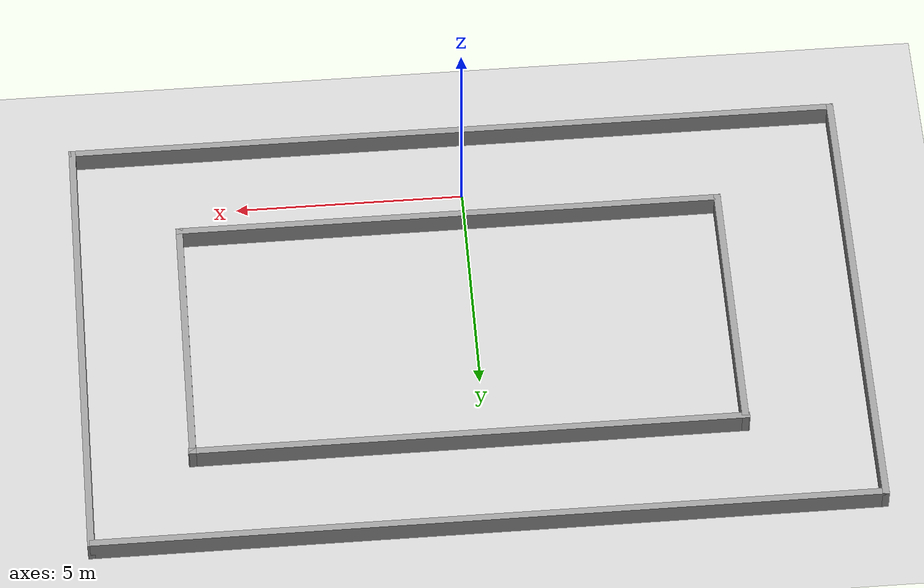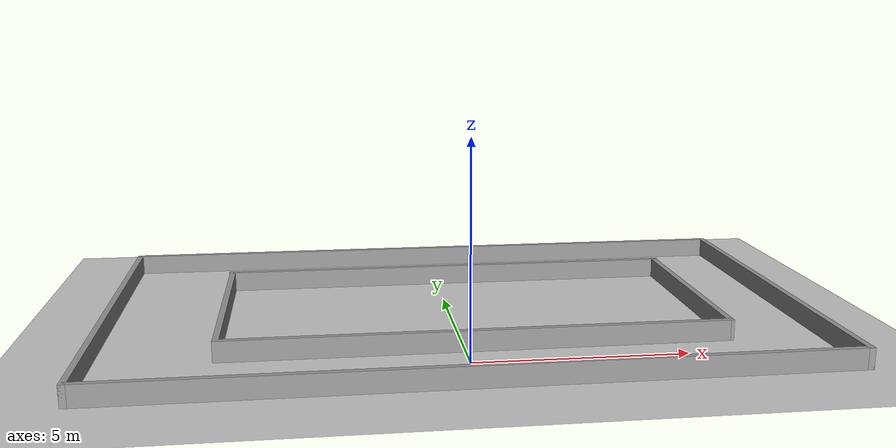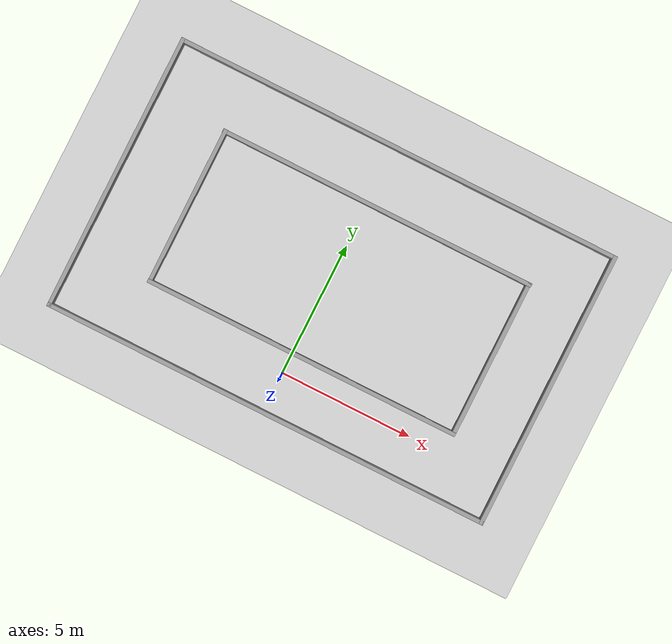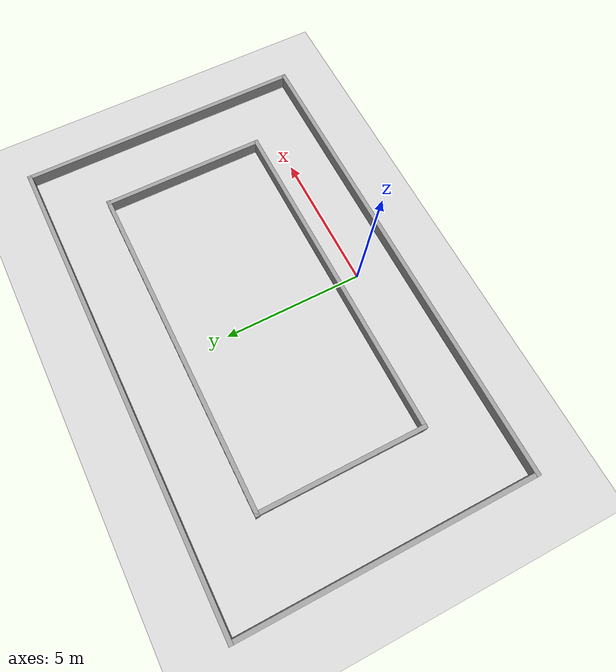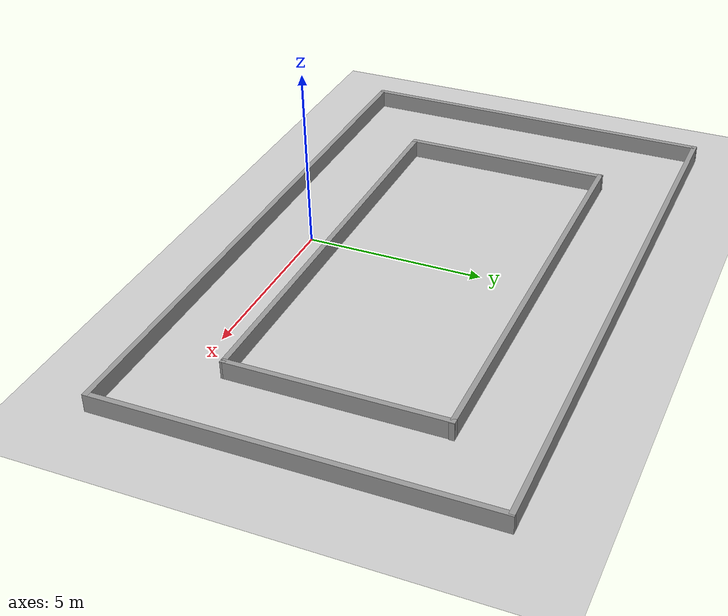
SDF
<sdf version="1.6">
 <world name="default">
  <light name="sun" type="directional">
   <pose>0 0 10 0 -0 0</pose>
   <diffuse>0.8 0.8 0.8 1</diffuse>
   <specular>0.1 0.1 0.1 1</specular>
   <attenuation>
    <range>1000</range>
    <constant>0.9</constant>
    <linear>0.01</linear>
    <quadratic>0.001</quadratic>
   </attenuation>
   <direction>-0.5 0.5 -1</direction>
  </light>
  <model name="ground_plane">
   <static>1</static>
   <link name="link">
    <collision name="collision">
     <geometry><plane><normal>0 0 1</normal><size>100 100</size></plane></geometry>
     <surface><friction><ode><mu>100</mu><mu2>50</mu2></ode></friction></surface>
    </collision>
    <visual name="visual">
     <cast_shadows>0</cast_shadows>
     <geometry><plane><normal>0 0 1</normal><size>100 100</size></plane></geometry>
     <material>
      <script><uri>file://media/materials/scripts/gazebo.material</uri><name>Gazebo/Grey</name></script>
     </material>
    </visual>
   </link>
  </model>
  <gravity>0 0 -9.8</gravity>
  <magnetic_field>6e-06 2.3e-05 -4.2e-05</magnetic_field>
  <atmosphere type="adiabatic"/>
  <physics name="default_physics" default="0" type="ode">
   <max_step_size>0.001</max_step_size>
   <real_time_factor>1</real_time_factor>
   <real_time_update_rate>1000</real_time_update_rate>
  </physics>
  <scene><ambient>0.4 0.4 0.4 1</ambient><background>0.7 0.7 0.7 1</background><shadows>1</shadows></scene>
  <spherical_coordinates>
   <surface_model>EARTH_WGS84</surface_model>
   <latitude_deg>0</latitude_deg>
   <longitude_deg>0</longitude_deg>
   <elevation>0</elevation>
   <heading_deg>0</heading_deg>
  </spherical_coordinates>
  <model name="racetrack.word">
   <pose>0.101319 3.67151 0 0 -0 0</pose>
   <link name="Wall_0">
    <collision name="Wall_0_Collision">
     <geometry><box><size>17.046 0.15 0.5</size></box></geometry>
     <pose>0 0 0.25 0 -0 0</pose>
    </collision>
    <visual name="Wall_0_Visual">
     <pose>0 0 0.25 0 -0 0</pose>
     <geometry><box><size>17.046 0.15 0.5</size></box></geometry>
     <material>
      <script><uri>file://media/materials/scripts/gazebo.material</uri><name>Gazebo/Grey</name></script>
      <ambient>1 1 1 1</ambient>
     </material>
     <meta><layer>0</layer></meta>
    </visual>
    <pose>0 -5.175 0 0 -0 0</pose>
   </link>
   <link name="Wall_11">
    <collision name="Wall_11_Collision">
     <geometry><box><size>6.00003 0.15 0.5</size></box></geometry>
     <pose>0 0 0.25 0 -0 0</pose>
    </collision>
    <visual name="Wall_11_Visual">
     <pose>0 0 0.25 0 -0 0</pose>
     <geometry><box><size>6.00003 0.15 0.5</size></box></geometry>
     <material>
      <script><uri>file://media/materials/scripts/gazebo.material</uri><name>Gazebo/Grey</name></script>
      <ambient>1 1 1 1</ambient>
     </material>
     <meta><layer>0</layer></meta>
    </visual>
    <pose>-5.684 0.065791 0 0 -0 1.5708</pose>
   </link>
   <link name="Wall_14">
    <collision name="Wall_14_Collision">
     <geometry><box><size>17 0.15 0.5</size></box></geometry>
     <pose>0 0 0.25 0 -0 0</pose>
    </collision>
    <visual name="Wall_14_Visual">
     <pose>0 0 0.25 0 -0 0</pose>
     <geometry><box><size>17 0.15 0.5</size></box></geometry>
     <material>
      <script><uri>file://media/materials/scripts/gazebo.material</uri><name>Gazebo/Grey</name></script>
      <ambient>1 1 1 1</ambient>
     </material>
     <meta><layer>0</layer></meta>
    </visual>
    <pose>-0.023 5.175 0 0 -0 0</pose>
   </link>
   <link name="Wall_17">
    <collision name="Wall_17_Collision">
     <geometry><box><size>10.5 0.15 0.5</size></box></geometry>
     <pose>0 0 0.25 0 -0 0</pose>
    </collision>
    <visual name="Wall_17_Visual">
     <pose>0 0 0.25 0 -0 0</pose>
     <geometry><box><size>10.5 0.15 0.5</size></box></geometry>
     <material>
      <script><uri>file://media/materials/scripts/gazebo.material</uri><name>Gazebo/Grey</name></script>
      <ambient>1 1 1 1</ambient>
     </material>
     <meta><layer>0</layer></meta>
    </visual>
    <pose>8.448 0 0 0 -0 1.5708</pose>
   </link>
   <link name="Wall_20">
    <collision name="Wall_20_Collision">
     <geometry><box><size>12.0597 0.15 0.5</size></box></geometry>
     <pose>0 0 0.25 0 -0 0</pose>
    </collision>
    <visual name="Wall_20_Visual">
     <pose>0 0 0.25 0 -0 0</pose>
     <geometry><box><size>12.0597 0.15 0.5</size></box></geometry>
     <material>
      <script><uri>file://media/materials/scripts/gazebo.material</uri><name>Gazebo/Grey</name></script>
      <ambient>1 1 1 1</ambient>
     </material>
     <meta><layer>0</layer></meta>
    </visual>
    <pose>0.250943 2.99079 0 0 -0 0</pose>
   </link>
   <link name="Wall_22">
    <collision name="Wall_22_Collision">
     <geometry><box><size>6 0.15 0.5</size></box></geometry>
     <pose>0 0 0.25 0 -0 0</pose>
    </collision>
    <visual name="Wall_22_Visual">
     <pose>0 0 0.25 0 -0 0</pose>
     <geometry><box><size>6 0.15 0.5</size></box></geometry>
     <material>
      <script><uri>file://media/materials/scripts/gazebo.material</uri><name>Gazebo/Grey</name></script>
      <ambient>1 1 1 1</ambient>
     </material>
     <meta><layer>0</layer></meta>
    </visual>
    <pose>6.18589 0.065791 0 0 -0 1.5708</pose>
   </link>
   <link name="Wall_7">
    <collision name="Wall_7_Collision">
     <geometry><box><size>10.5 0.15 0.5</size></box></geometry>
     <pose>0 0 0.25 0 -0 0</pose>
    </collision>
    <visual name="Wall_7_Visual">
     <pose>0 0 0.25 0 -0 0</pose>
     <geometry><box><size>10.5 0.15 0.5</size></box></geometry>
     <material>
      <script><uri>file://media/materials/scripts/gazebo.material</uri><name>Gazebo/Grey</name></script>
      <ambient>1 1 1 1</ambient>
     </material>
     <meta><layer>0</layer></meta>
    </visual>
    <pose>-8.448 0 0 0 -0 1.5708</pose>
   </link>
   <link name="Wall_9">
    <collision name="Wall_9_Collision">
     <geometry><box><size>12.0219 0.15 0.5</size></box></geometry>
     <pose>0 0 0.25 0 -0 0</pose>
    </collision>
    <visual name="Wall_9_Visual">
     <pose>0 0 0.25 0 -0 0</pose>
     <geometry><box><size>12.0219 0.15 0.5</size></box></geometry>
     <material>
      <script><uri>file://media/materials/scripts/gazebo.material</uri><name>Gazebo/Grey</name></script>
      <ambient>1 1 1 1</ambient>
     </material>
     <meta><layer>0</layer></meta>
    </visual>
    <pose>0.249943 -2.8626 0 0 -0 0.000572</pose>
   </link>
   <static>1</static>
  </model>
 </world>
</sdf>
